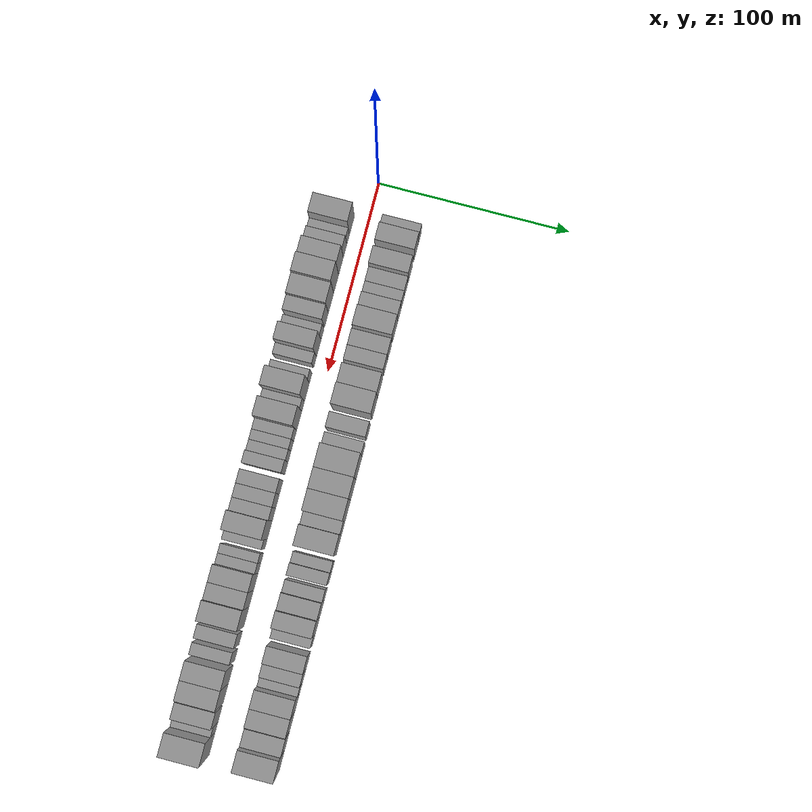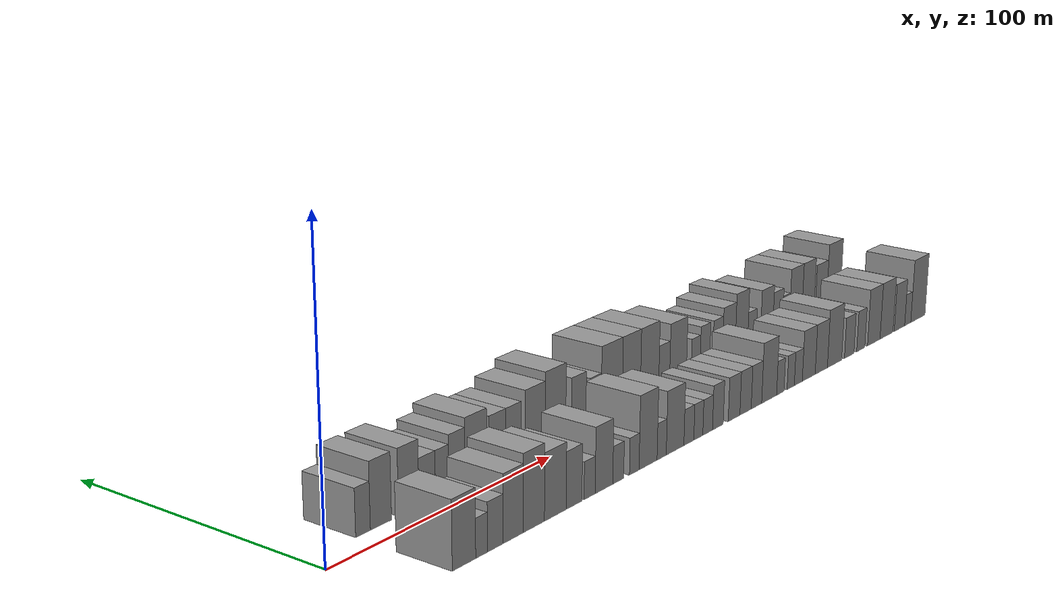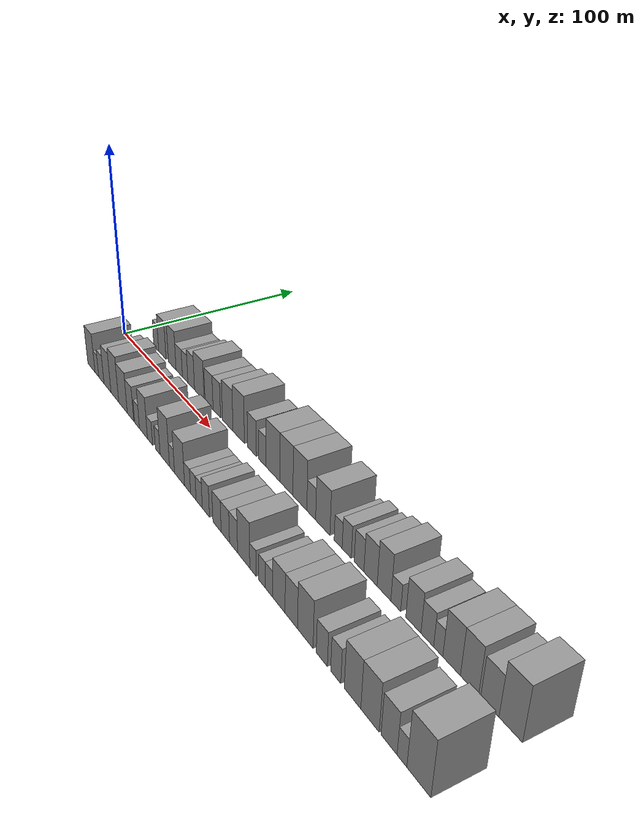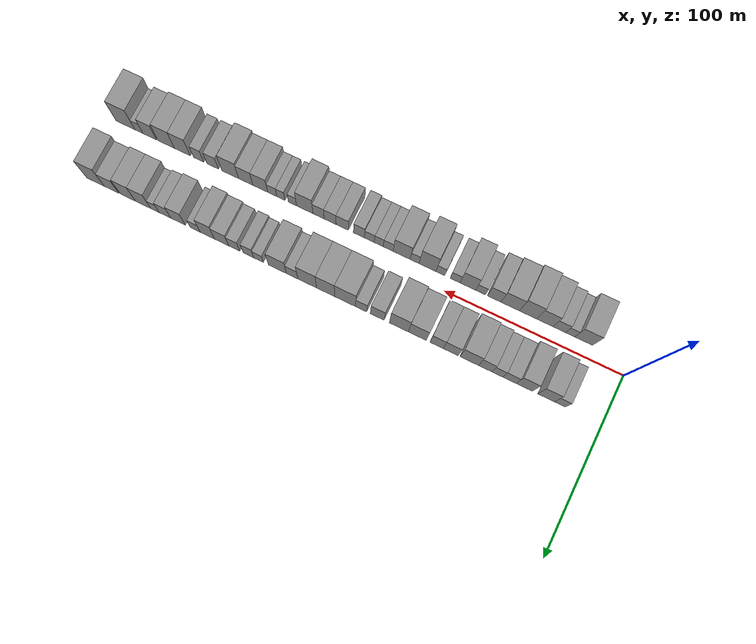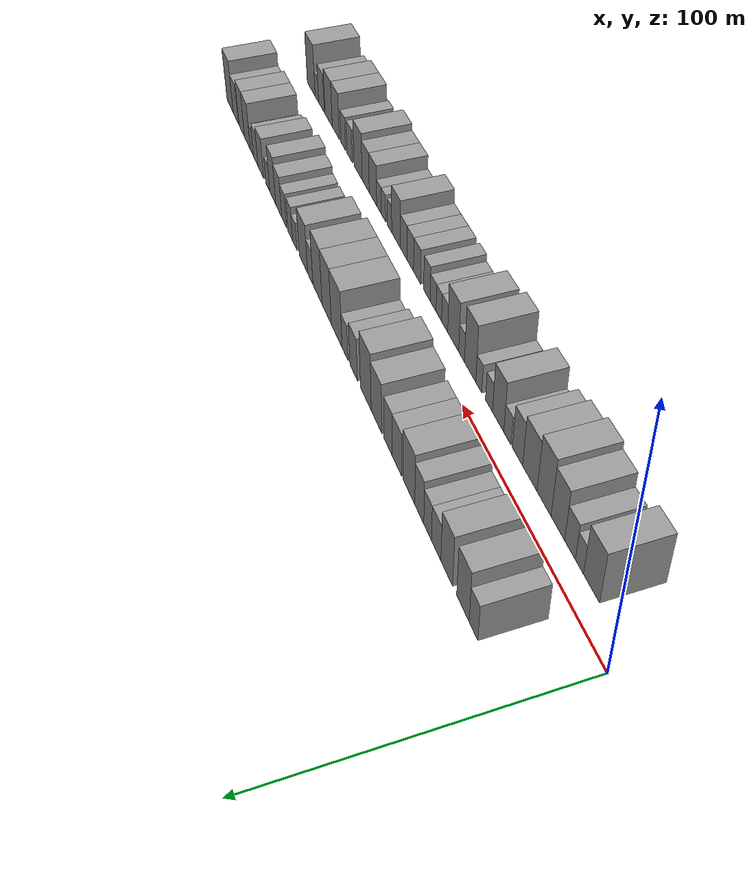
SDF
<sdf version="1.6">
 <world name="default">
  <scene>
   <sky><clouds><speed>12</speed></clouds></sky>
   <ambient>0.4 0.4 0.4 1</ambient>
   <background>0.7 0.7 0.7 1</background>
   <shadows>1</shadows>
  </scene>
  <gravity>0 0 -9.8066</gravity>
  <magnetic_field>6e-06 2.3e-05 -4.2e-05</magnetic_field>
  <physics default="0" name="default_physics" type="ode">
   <ode>
    <solver>
     <type>quick</type>
     <iters>10</iters>
     <sor>1.0</sor>
     <use_dynamic_moi_rescaling>0</use_dynamic_moi_rescaling>
    </solver>
    <constraints>
     <cfm>0</cfm>
     <erp>0.2</erp>
     <contact_max_correcting_vel>100</contact_max_correcting_vel>
     <contact_surface_layer>0.001</contact_surface_layer>
    </constraints>
   </ode>
   <max_step_size>0.004</max_step_size>
   <real_time_factor>1</real_time_factor>
   <real_time_update_rate>250</real_time_update_rate>
  </physics>
  <light name="sun" type="directional">
   <pose>0 0 10 0 0 0</pose>
   <diffuse>0.8 0.8 0.8 1</diffuse>
   <specular>0.2 0.2 0.2 1</specular>
   <attenuation>
    <range>1000</range>
    <constant>0.9</constant>
    <linear>0.01</linear>
    <quadratic>0.001</quadratic>
   </attenuation>
   <direction>-0.5 0.1 -0.9</direction>
  </light>
  <model name="building_1">
   <static>1</static>
   <pose>23.0567 17.5000 0 0.000000 0.000000 1.570796</pose>
   <link name="link">
    <pose>0 0 7.50 0 0 0</pose>
    <collision name="collision"><geometry><box><size>20.0000 6.1135 15.0000</size></box></geometry></collision>
    <visual name="visual">
     <cast_shadows>0</cast_shadows>
     <geometry><box><size>20.0000 6.1135 15.0000</size></box></geometry>
     <material>
      <script>
       <uri>model://grey_wall/materials/scripts</uri>
       <uri>model://grey_wall/materials/textures</uri>
       <name>vrc/grey_wall</name>
      </script>
     </material>
    </visual>
   </link>
  </model>
  <model name="building_2">
   <static>1</static>
   <pose>30.5935 17.5000 0 0.000000 0.000000 1.570796</pose>
   <link name="link">
    <pose>0 0 10.50 0 0 0</pose>
    <collision name="collision"><geometry><box><size>20.0000 8.9601 21.0000</size></box></geometry></collision>
    <visual name="visual">
     <cast_shadows>0</cast_shadows>
     <geometry><box><size>20.0000 8.9601 21.0000</size></box></geometry>
     <material>
      <script>
       <uri>model://grey_wall/materials/scripts</uri>
       <uri>model://grey_wall/materials/textures</uri>
       <name>vrc/grey_wall</name>
      </script>
     </material>
    </visual>
   </link>
  </model>
  <model name="building_3">
   <static>1</static>
   <pose>42.5482 17.5000 0 0.000000 0.000000 1.570796</pose>
   <link name="link">
    <pose>0 0 10.50 0 0 0</pose>
    <collision name="collision"><geometry><box><size>20.0000 8.9492 21.0000</size></box></geometry></collision>
    <visual name="visual">
     <cast_shadows>0</cast_shadows>
     <geometry><box><size>20.0000 8.9492 21.0000</size></box></geometry>
     <material>
      <script>
       <uri>model://grey_wall/materials/scripts</uri>
       <uri>model://grey_wall/materials/textures</uri>
       <name>vrc/grey_wall</name>
      </script>
     </material>
    </visual>
   </link>
  </model>
  <model name="building_4">
   <static>1</static>
   <pose>50.7129 17.5000 0 0.000000 0.000000 1.570796</pose>
   <link name="link">
    <pose>0 0 7.50 0 0 0</pose>
    <collision name="collision"><geometry><box><size>20.0000 7.3801 15.0000</size></box></geometry></collision>
    <visual name="visual">
     <cast_shadows>0</cast_shadows>
     <geometry><box><size>20.0000 7.3801 15.0000</size></box></geometry>
     <material>
      <script>
       <uri>model://grey_wall/materials/scripts</uri>
       <uri>model://grey_wall/materials/textures</uri>
       <name>vrc/grey_wall</name>
      </script>
     </material>
    </visual>
   </link>
  </model>
  <model name="building_5">
   <static>1</static>
   <pose>57.4828 17.5000 0 0.000000 0.000000 1.570796</pose>
   <link name="link">
    <pose>0 0 7.50 0 0 0</pose>
    <collision name="collision"><geometry><box><size>20.0000 6.1598 15.0000</size></box></geometry></collision>
    <visual name="visual">
     <cast_shadows>0</cast_shadows>
     <geometry><box><size>20.0000 6.1598 15.0000</size></box></geometry>
     <material>
      <script>
       <uri>model://grey_wall/materials/scripts</uri>
       <uri>model://grey_wall/materials/textures</uri>
       <name>vrc/grey_wall</name>
      </script>
     </material>
    </visual>
   </link>
  </model>
  <model name="building_6">
   <static>1</static>
   <pose>64.2655 17.5000 0 0.000000 0.000000 1.570796</pose>
   <link name="link">
    <pose>0 0 9.00 0 0 0</pose>
    <collision name="collision"><geometry><box><size>20.0000 7.4056 18.0000</size></box></geometry></collision>
    <visual name="visual">
     <cast_shadows>0</cast_shadows>
     <geometry><box><size>20.0000 7.4056 18.0000</size></box></geometry>
     <material>
      <script>
       <uri>model://grey_wall/materials/scripts</uri>
       <uri>model://grey_wall/materials/textures</uri>
       <name>vrc/grey_wall</name>
      </script>
     </material>
    </visual>
   </link>
  </model>
  <model name="building_7">
   <static>1</static>
   <pose>73.1380 17.5000 0 0.000000 0.000000 1.570796</pose>
   <link name="link">
    <pose>0 0 10.50 0 0 0</pose>
    <collision name="collision"><geometry><box><size>20.0000 10.3393 21.0000</size></box></geometry></collision>
    <visual name="visual">
     <cast_shadows>0</cast_shadows>
     <geometry><box><size>20.0000 10.3393 21.0000</size></box></geometry>
     <material>
      <script>
       <uri>model://grey_wall/materials/scripts</uri>
       <uri>model://grey_wall/materials/textures</uri>
       <name>vrc/grey_wall</name>
      </script>
     </material>
    </visual>
   </link>
  </model>
  <model name="building_8">
   <static>1</static>
   <pose>83.4733 17.5000 0 0.000000 0.000000 1.570796</pose>
   <link name="link">
    <pose>0 0 9.00 0 0 0</pose>
    <collision name="collision"><geometry><box><size>20.0000 8.3312 18.0000</size></box></geometry></collision>
    <visual name="visual">
     <cast_shadows>0</cast_shadows>
     <geometry><box><size>20.0000 8.3312 18.0000</size></box></geometry>
     <material>
      <script>
       <uri>model://grey_wall/materials/scripts</uri>
       <uri>model://grey_wall/materials/textures</uri>
       <name>vrc/grey_wall</name>
      </script>
     </material>
    </visual>
   </link>
  </model>
  <model name="building_9">
   <static>1</static>
   <pose>91.4008 17.5000 0 0.000000 0.000000 1.570796</pose>
   <link name="link">
    <pose>0 0 9.00 0 0 0</pose>
    <collision name="collision"><geometry><box><size>20.0000 7.5239 18.0000</size></box></geometry></collision>
    <visual name="visual">
     <cast_shadows>0</cast_shadows>
     <geometry><box><size>20.0000 7.5239 18.0000</size></box></geometry>
     <material>
      <script>
       <uri>model://grey_wall/materials/scripts</uri>
       <uri>model://grey_wall/materials/textures</uri>
       <name>vrc/grey_wall</name>
      </script>
     </material>
    </visual>
   </link>
  </model>
  <model name="building_10">
   <static>1</static>
   <pose>102.2563 17.5000 0 0.000000 0.000000 1.570796</pose>
   <link name="link">
    <pose>0 0 10.50 0 0 0</pose>
    <collision name="collision"><geometry><box><size>20.0000 10.1870 21.0000</size></box></geometry></collision>
    <visual name="visual">
     <cast_shadows>0</cast_shadows>
     <geometry><box><size>20.0000 10.1870 21.0000</size></box></geometry>
     <material>
      <script>
       <uri>model://grey_wall/materials/scripts</uri>
       <uri>model://grey_wall/materials/textures</uri>
       <name>vrc/grey_wall</name>
      </script>
     </material>
    </visual>
   </link>
  </model>
  <model name="building_11">
   <static>1</static>
   <pose>112.7394 17.5000 0 0.000000 0.000000 1.570796</pose>
   <link name="link">
    <pose>0 0 12.00 0 0 0</pose>
    <collision name="collision"><geometry><box><size>20.0000 10.7792 24.0000</size></box></geometry></collision>
    <visual name="visual">
     <cast_shadows>0</cast_shadows>
     <geometry><box><size>20.0000 10.7792 24.0000</size></box></geometry>
     <material>
      <script>
       <uri>model://grey_wall/materials/scripts</uri>
       <uri>model://grey_wall/materials/textures</uri>
       <name>vrc/grey_wall</name>
      </script>
     </material>
    </visual>
   </link>
  </model>
  <model name="building_12">
   <static>1</static>
   <pose>125.0622 17.5000 0 0.000000 0.000000 1.570796</pose>
   <link name="link">
    <pose>0 0 9.00 0 0 0</pose>
    <collision name="collision"><geometry><box><size>20.0000 7.8665 18.0000</size></box></geometry></collision>
    <visual name="visual">
     <cast_shadows>0</cast_shadows>
     <geometry><box><size>20.0000 7.8665 18.0000</size></box></geometry>
     <material>
      <script>
       <uri>model://grey_wall/materials/scripts</uri>
       <uri>model://grey_wall/materials/textures</uri>
       <name>vrc/grey_wall</name>
      </script>
     </material>
    </visual>
   </link>
  </model>
  <model name="building_13">
   <static>1</static>
   <pose>134.1541 17.5000 0 0.000000 0.000000 1.570796</pose>
   <link name="link">
    <pose>0 0 7.50 0 0 0</pose>
    <collision name="collision"><geometry><box><size>20.0000 6.3173 15.0000</size></box></geometry></collision>
    <visual name="visual">
     <cast_shadows>0</cast_shadows>
     <geometry><box><size>20.0000 6.3173 15.0000</size></box></geometry>
     <material>
      <script>
       <uri>model://grey_wall/materials/scripts</uri>
       <uri>model://grey_wall/materials/textures</uri>
       <name>vrc/grey_wall</name>
      </script>
     </material>
    </visual>
   </link>
  </model>
  <model name="building_14">
   <static>1</static>
   <pose>143.2577 17.5000 0 0.000000 0.000000 1.570796</pose>
   <link name="link">
    <pose>0 0 12.00 0 0 0</pose>
    <collision name="collision"><geometry><box><size>20.0000 11.8899 24.0000</size></box></geometry></collision>
    <visual name="visual">
     <cast_shadows>0</cast_shadows>
     <geometry><box><size>20.0000 11.8899 24.0000</size></box></geometry>
     <material>
      <script>
       <uri>model://grey_wall/materials/scripts</uri>
       <uri>model://grey_wall/materials/textures</uri>
       <name>vrc/grey_wall</name>
      </script>
     </material>
    </visual>
   </link>
  </model>
  <model name="building_15">
   <static>1</static>
   <pose>154.4474 17.5000 0 0.000000 0.000000 1.570796</pose>
   <link name="link">
    <pose>0 0 12.00 0 0 0</pose>
    <collision name="collision"><geometry><box><size>20.0000 10.4894 24.0000</size></box></geometry></collision>
    <visual name="visual">
     <cast_shadows>0</cast_shadows>
     <geometry><box><size>20.0000 10.4894 24.0000</size></box></geometry>
     <material>
      <script>
       <uri>model://grey_wall/materials/scripts</uri>
       <uri>model://grey_wall/materials/textures</uri>
       <name>vrc/grey_wall</name>
      </script>
     </material>
    </visual>
   </link>
  </model>
  <model name="building_16">
   <static>1</static>
   <pose>165.1244 17.5000 0 0.000000 0.000000 1.570796</pose>
   <link name="link">
    <pose>0 0 12.00 0 0 0</pose>
    <collision name="collision"><geometry><box><size>20.0000 10.8648 24.0000</size></box></geometry></collision>
    <visual name="visual">
     <cast_shadows>0</cast_shadows>
     <geometry><box><size>20.0000 10.8648 24.0000</size></box></geometry>
     <material>
      <script>
       <uri>model://grey_wall/materials/scripts</uri>
       <uri>model://grey_wall/materials/textures</uri>
       <name>vrc/grey_wall</name>
      </script>
     </material>
    </visual>
   </link>
  </model>
  <model name="building_17">
   <static>1</static>
   <pose>173.8574 17.5000 0 0.000000 0.000000 1.570796</pose>
   <link name="link">
    <pose>0 0 7.50 0 0 0</pose>
    <collision name="collision"><geometry><box><size>20.0000 6.6013 15.0000</size></box></geometry></collision>
    <visual name="visual">
     <cast_shadows>0</cast_shadows>
     <geometry><box><size>20.0000 6.6013 15.0000</size></box></geometry>
     <material>
      <script>
       <uri>model://grey_wall/materials/scripts</uri>
       <uri>model://grey_wall/materials/textures</uri>
       <name>vrc/grey_wall</name>
      </script>
     </material>
    </visual>
   </link>
  </model>
  <model name="building_18">
   <static>1</static>
   <pose>182.3586 17.5000 0 0.000000 0.000000 1.570796</pose>
   <link name="link">
    <pose>0 0 10.50 0 0 0</pose>
    <collision name="collision"><geometry><box><size>20.0000 10.4010 21.0000</size></box></geometry></collision>
    <visual name="visual">
     <cast_shadows>0</cast_shadows>
     <geometry><box><size>20.0000 10.4010 21.0000</size></box></geometry>
     <material>
      <script>
       <uri>model://grey_wall/materials/scripts</uri>
       <uri>model://grey_wall/materials/textures</uri>
       <name>vrc/grey_wall</name>
      </script>
     </material>
    </visual>
   </link>
  </model>
  <model name="building_19">
   <static>1</static>
   <pose>193.3541 17.5000 0 0.000000 0.000000 1.570796</pose>
   <link name="link">
    <pose>0 0 6.00 0 0 0</pose>
    <collision name="collision"><geometry><box><size>20.0000 5.5900 12.0000</size></box></geometry></collision>
    <visual name="visual">
     <cast_shadows>0</cast_shadows>
     <geometry><box><size>20.0000 5.5900 12.0000</size></box></geometry>
     <material>
      <script>
       <uri>model://grey_wall/materials/scripts</uri>
       <uri>model://grey_wall/materials/textures</uri>
       <name>vrc/grey_wall</name>
      </script>
     </material>
    </visual>
   </link>
  </model>
  <model name="building_20">
   <static>1</static>
   <pose>199.2261 17.5000 0 0.000000 0.000000 1.570796</pose>
   <link name="link">
    <pose>0 0 7.50 0 0 0</pose>
    <collision name="collision"><geometry><box><size>20.0000 6.1541 15.0000</size></box></geometry></collision>
    <visual name="visual">
     <cast_shadows>0</cast_shadows>
     <geometry><box><size>20.0000 6.1541 15.0000</size></box></geometry>
     <material>
      <script>
       <uri>model://grey_wall/materials/scripts</uri>
       <uri>model://grey_wall/materials/textures</uri>
       <name>vrc/grey_wall</name>
      </script>
     </material>
    </visual>
   </link>
  </model>
  <model name="building_21">
   <static>1</static>
   <pose>207.4873 17.5000 0 0.000000 0.000000 1.570796</pose>
   <link name="link">
    <pose>0 0 7.50 0 0 0</pose>
    <collision name="collision"><geometry><box><size>20.0000 6.3683 15.0000</size></box></geometry></collision>
    <visual name="visual">
     <cast_shadows>0</cast_shadows>
     <geometry><box><size>20.0000 6.3683 15.0000</size></box></geometry>
     <material>
      <script>
       <uri>model://grey_wall/materials/scripts</uri>
       <uri>model://grey_wall/materials/textures</uri>
       <name>vrc/grey_wall</name>
      </script>
     </material>
    </visual>
   </link>
  </model>
  <model name="building_22">
   <static>1</static>
   <pose>214.8845 17.5000 0 0.000000 0.000000 1.570796</pose>
   <link name="link">
    <pose>0 0 9.00 0 0 0</pose>
    <collision name="collision"><geometry><box><size>20.0000 8.4260 18.0000</size></box></geometry></collision>
    <visual name="visual">
     <cast_shadows>0</cast_shadows>
     <geometry><box><size>20.0000 8.4260 18.0000</size></box></geometry>
     <material>
      <script>
       <uri>model://grey_wall/materials/scripts</uri>
       <uri>model://grey_wall/materials/textures</uri>
       <name>vrc/grey_wall</name>
      </script>
     </material>
    </visual>
   </link>
  </model>
  <model name="building_23">
   <static>1</static>
   <pose>223.3157 17.5000 0 0.000000 0.000000 1.570796</pose>
   <link name="link">
    <pose>0 0 10.50 0 0 0</pose>
    <collision name="collision"><geometry><box><size>20.0000 8.4365 21.0000</size></box></geometry></collision>
    <visual name="visual">
     <cast_shadows>0</cast_shadows>
     <geometry><box><size>20.0000 8.4365 21.0000</size></box></geometry>
     <material>
      <script>
       <uri>model://grey_wall/materials/scripts</uri>
       <uri>model://grey_wall/materials/textures</uri>
       <name>vrc/grey_wall</name>
      </script>
     </material>
    </visual>
   </link>
  </model>
  <model name="building_24">
   <static>1</static>
   <pose>230.4687 17.5000 0 0.000000 0.000000 1.570796</pose>
   <link name="link">
    <pose>0 0 6.00 0 0 0</pose>
    <collision name="collision"><geometry><box><size>20.0000 5.8695 12.0000</size></box></geometry></collision>
    <visual name="visual">
     <cast_shadows>0</cast_shadows>
     <geometry><box><size>20.0000 5.8695 12.0000</size></box></geometry>
     <material>
      <script>
       <uri>model://grey_wall/materials/scripts</uri>
       <uri>model://grey_wall/materials/textures</uri>
       <name>vrc/grey_wall</name>
      </script>
     </material>
    </visual>
   </link>
  </model>
  <model name="building_25">
   <static>1</static>
   <pose>240.7069 17.5000 0 0.000000 0.000000 1.570796</pose>
   <link name="link">
    <pose>0 0 9.00 0 0 0</pose>
    <collision name="collision"><geometry><box><size>20.0000 8.6068 18.0000</size></box></geometry></collision>
    <visual name="visual">
     <cast_shadows>0</cast_shadows>
     <geometry><box><size>20.0000 8.6068 18.0000</size></box></geometry>
     <material>
      <script>
       <uri>model://grey_wall/materials/scripts</uri>
       <uri>model://grey_wall/materials/textures</uri>
       <name>vrc/grey_wall</name>
      </script>
     </material>
    </visual>
   </link>
  </model>
  <model name="building_26">
   <static>1</static>
   <pose>248.5009 17.5000 0 0.000000 0.000000 1.570796</pose>
   <link name="link">
    <pose>0 0 7.50 0 0 0</pose>
    <collision name="collision"><geometry><box><size>20.0000 6.9813 15.0000</size></box></geometry></collision>
    <visual name="visual">
     <cast_shadows>0</cast_shadows>
     <geometry><box><size>20.0000 6.9813 15.0000</size></box></geometry>
     <material>
      <script>
       <uri>model://grey_wall/materials/scripts</uri>
       <uri>model://grey_wall/materials/textures</uri>
       <name>vrc/grey_wall</name>
      </script>
     </material>
    </visual>
   </link>
  </model>
  <model name="building_27">
   <static>1</static>
   <pose>254.4521 17.5000 0 0.000000 0.000000 1.570796</pose>
   <link name="link">
    <pose>0 0 6.00 0 0 0</pose>
    <collision name="collision"><geometry><box><size>20.0000 4.9211 12.0000</size></box></geometry></collision>
    <visual name="visual">
     <cast_shadows>0</cast_shadows>
     <geometry><box><size>20.0000 4.9211 12.0000</size></box></geometry>
     <material>
      <script>
       <uri>model://grey_wall/materials/scripts</uri>
       <uri>model://grey_wall/materials/textures</uri>
       <name>vrc/grey_wall</name>
      </script>
     </material>
    </visual>
   </link>
  </model>
  <model name="building_28">
   <static>1</static>
   <pose>261.4727 17.5000 0 0.000000 0.000000 1.570796</pose>
   <link name="link">
    <pose>0 0 10.50 0 0 0</pose>
    <collision name="collision"><geometry><box><size>20.0000 9.1201 21.0000</size></box></geometry></collision>
    <visual name="visual">
     <cast_shadows>0</cast_shadows>
     <geometry><box><size>20.0000 9.1201 21.0000</size></box></geometry>
     <material>
      <script>
       <uri>model://grey_wall/materials/scripts</uri>
       <uri>model://grey_wall/materials/textures</uri>
       <name>vrc/grey_wall</name>
      </script>
     </material>
    </visual>
   </link>
  </model>
  <model name="building_29">
   <static>1</static>
   <pose>270.5441 17.5000 0 0.000000 0.000000 1.570796</pose>
   <link name="link">
    <pose>0 0 10.50 0 0 0</pose>
    <collision name="collision"><geometry><box><size>20.0000 9.0228 21.0000</size></box></geometry></collision>
    <visual name="visual">
     <cast_shadows>0</cast_shadows>
     <geometry><box><size>20.0000 9.0228 21.0000</size></box></geometry>
     <material>
      <script>
       <uri>model://grey_wall/materials/scripts</uri>
       <uri>model://grey_wall/materials/textures</uri>
       <name>vrc/grey_wall</name>
      </script>
     </material>
    </visual>
   </link>
  </model>
  <model name="building_30">
   <static>1</static>
   <pose>280.3954 17.5000 0 0.000000 0.000000 1.570796</pose>
   <link name="link">
    <pose>0 0 9.00 0 0 0</pose>
    <collision name="collision"><geometry><box><size>20.0000 8.6798 18.0000</size></box></geometry></collision>
    <visual name="visual">
     <cast_shadows>0</cast_shadows>
     <geometry><box><size>20.0000 8.6798 18.0000</size></box></geometry>
     <material>
      <script>
       <uri>model://grey_wall/materials/scripts</uri>
       <uri>model://grey_wall/materials/textures</uri>
       <name>vrc/grey_wall</name>
      </script>
     </material>
    </visual>
   </link>
  </model>
  <model name="building_31">
   <static>1</static>
   <pose>290.0700 17.5000 0 0.000000 0.000000 1.570796</pose>
   <link name="link">
    <pose>0 0 12.00 0 0 0</pose>
    <collision name="collision"><geometry><box><size>20.0000 10.6693 24.0000</size></box></geometry></collision>
    <visual name="visual">
     <cast_shadows>0</cast_shadows>
     <geometry><box><size>20.0000 10.6693 24.0000</size></box></geometry>
     <material>
      <script>
       <uri>model://grey_wall/materials/scripts</uri>
       <uri>model://grey_wall/materials/textures</uri>
       <name>vrc/grey_wall</name>
      </script>
     </material>
    </visual>
   </link>
  </model>
  <model name="building_32">
   <static>1</static>
   <pose>24.9873 -17.5000 0 0.000000 0.000000 1.570796</pose>
   <link name="link">
    <pose>0 0 10.50 0 0 0</pose>
    <collision name="collision"><geometry><box><size>20.0000 9.9746 21.0000</size></box></geometry></collision>
    <visual name="visual">
     <cast_shadows>0</cast_shadows>
     <geometry><box><size>20.0000 9.9746 21.0000</size></box></geometry>
     <material>
      <script>
       <uri>model://grey_wall/materials/scripts</uri>
       <uri>model://grey_wall/materials/textures</uri>
       <name>vrc/grey_wall</name>
      </script>
     </material>
    </visual>
   </link>
  </model>
  <model name="building_33">
   <static>1</static>
   <pose>32.5217 -17.5000 0 0.000000 0.000000 1.570796</pose>
   <link name="link">
    <pose>0 0 6.00 0 0 0</pose>
    <collision name="collision"><geometry><box><size>20.0000 5.0942 12.0000</size></box></geometry></collision>
    <visual name="visual">
     <cast_shadows>0</cast_shadows>
     <geometry><box><size>20.0000 5.0942 12.0000</size></box></geometry>
     <material>
      <script>
       <uri>model://grey_wall/materials/scripts</uri>
       <uri>model://grey_wall/materials/textures</uri>
       <name>vrc/grey_wall</name>
      </script>
     </material>
    </visual>
   </link>
  </model>
  <model name="building_34">
   <static>1</static>
   <pose>38.5519 -17.5000 0 0.000000 0.000000 1.570796</pose>
   <link name="link">
    <pose>0 0 7.50 0 0 0</pose>
    <collision name="collision"><geometry><box><size>20.0000 6.9662 15.0000</size></box></geometry></collision>
    <visual name="visual">
     <cast_shadows>0</cast_shadows>
     <geometry><box><size>20.0000 6.9662 15.0000</size></box></geometry>
     <material>
      <script>
       <uri>model://grey_wall/materials/scripts</uri>
       <uri>model://grey_wall/materials/textures</uri>
       <name>vrc/grey_wall</name>
      </script>
     </material>
    </visual>
   </link>
  </model>
  <model name="building_35">
   <static>1</static>
   <pose>46.5921 -17.5000 0 0.000000 0.000000 1.570796</pose>
   <link name="link">
    <pose>0 0 10.50 0 0 0</pose>
    <collision name="collision"><geometry><box><size>20.0000 9.1143 21.0000</size></box></geometry></collision>
    <visual name="visual">
     <cast_shadows>0</cast_shadows>
     <geometry><box><size>20.0000 9.1143 21.0000</size></box></geometry>
     <material>
      <script>
       <uri>model://grey_wall/materials/scripts</uri>
       <uri>model://grey_wall/materials/textures</uri>
       <name>vrc/grey_wall</name>
      </script>
     </material>
    </visual>
   </link>
  </model>
  <model name="building_36">
   <static>1</static>
   <pose>56.0097 -17.5000 0 0.000000 0.000000 1.570796</pose>
   <link name="link">
    <pose>0 0 12.00 0 0 0</pose>
    <collision name="collision"><geometry><box><size>20.0000 9.7208 24.0000</size></box></geometry></collision>
    <visual name="visual">
     <cast_shadows>0</cast_shadows>
     <geometry><box><size>20.0000 9.7208 24.0000</size></box></geometry>
     <material>
      <script>
       <uri>model://grey_wall/materials/scripts</uri>
       <uri>model://grey_wall/materials/textures</uri>
       <name>vrc/grey_wall</name>
      </script>
     </material>
    </visual>
   </link>
  </model>
  <model name="building_37">
   <static>1</static>
   <pose>66.0737 -17.5000 0 0.000000 0.000000 1.570796</pose>
   <link name="link">
    <pose>0 0 10.50 0 0 0</pose>
    <collision name="collision"><geometry><box><size>20.0000 10.4071 21.0000</size></box></geometry></collision>
    <visual name="visual">
     <cast_shadows>0</cast_shadows>
     <geometry><box><size>20.0000 10.4071 21.0000</size></box></geometry>
     <material>
      <script>
       <uri>model://grey_wall/materials/scripts</uri>
       <uri>model://grey_wall/materials/textures</uri>
       <name>vrc/grey_wall</name>
      </script>
     </material>
    </visual>
   </link>
  </model>
  <model name="building_38">
   <static>1</static>
   <pose>75.1078 -17.5000 0 0.000000 0.000000 1.570796</pose>
   <link name="link">
    <pose>0 0 9.00 0 0 0</pose>
    <collision name="collision"><geometry><box><size>20.0000 7.6611 18.0000</size></box></geometry></collision>
    <visual name="visual">
     <cast_shadows>0</cast_shadows>
     <geometry><box><size>20.0000 7.6611 18.0000</size></box></geometry>
     <material>
      <script>
       <uri>model://grey_wall/materials/scripts</uri>
       <uri>model://grey_wall/materials/textures</uri>
       <name>vrc/grey_wall</name>
      </script>
     </material>
    </visual>
   </link>
  </model>
  <model name="building_39">
   <static>1</static>
   <pose>82.7223 -17.5000 0 0.000000 0.000000 1.570796</pose>
   <link name="link">
    <pose>0 0 6.00 0 0 0</pose>
    <collision name="collision"><geometry><box><size>20.0000 5.5679 12.0000</size></box></geometry></collision>
    <visual name="visual">
     <cast_shadows>0</cast_shadows>
     <geometry><box><size>20.0000 5.5679 12.0000</size></box></geometry>
     <material>
      <script>
       <uri>model://grey_wall/materials/scripts</uri>
       <uri>model://grey_wall/materials/textures</uri>
       <name>vrc/grey_wall</name>
      </script>
     </material>
    </visual>
   </link>
  </model>
  <model name="building_40">
   <static>1</static>
   <pose>89.9663 -17.5000 0 0.000000 0.000000 1.570796</pose>
   <link name="link">
    <pose>0 0 10.50 0 0 0</pose>
    <collision name="collision"><geometry><box><size>20.0000 8.9201 21.0000</size></box></geometry></collision>
    <visual name="visual">
     <cast_shadows>0</cast_shadows>
     <geometry><box><size>20.0000 8.9201 21.0000</size></box></geometry>
     <material>
      <script>
       <uri>model://grey_wall/materials/scripts</uri>
       <uri>model://grey_wall/materials/textures</uri>
       <name>vrc/grey_wall</name>
      </script>
     </material>
    </visual>
   </link>
  </model>
  <model name="building_41">
   <static>1</static>
   <pose>97.2528 -17.5000 0 0.000000 0.000000 1.570796</pose>
   <link name="link">
    <pose>0 0 6.00 0 0 0</pose>
    <collision name="collision"><geometry><box><size>20.0000 5.6529 12.0000</size></box></geometry></collision>
    <visual name="visual">
     <cast_shadows>0</cast_shadows>
     <geometry><box><size>20.0000 5.6529 12.0000</size></box></geometry>
     <material>
      <script>
       <uri>model://grey_wall/materials/scripts</uri>
       <uri>model://grey_wall/materials/textures</uri>
       <name>vrc/grey_wall</name>
      </script>
     </material>
    </visual>
   </link>
  </model>
  <model name="building_42">
   <static>1</static>
   <pose>105.6208 -17.5000 0 0.000000 0.000000 1.570796</pose>
   <link name="link">
    <pose>0 0 6.00 0 0 0</pose>
    <collision name="collision"><geometry><box><size>20.0000 5.0831 12.0000</size></box></geometry></collision>
    <visual name="visual">
     <cast_shadows>0</cast_shadows>
     <geometry><box><size>20.0000 5.0831 12.0000</size></box></geometry>
     <material>
      <script>
       <uri>model://grey_wall/materials/scripts</uri>
       <uri>model://grey_wall/materials/textures</uri>
       <name>vrc/grey_wall</name>
      </script>
     </material>
    </visual>
   </link>
  </model>
  <model name="building_43">
   <static>1</static>
   <pose>113.0067 -17.5000 0 0.000000 0.000000 1.570796</pose>
   <link name="link">
    <pose>0 0 12.00 0 0 0</pose>
    <collision name="collision"><geometry><box><size>20.0000 9.6888 24.0000</size></box></geometry></collision>
    <visual name="visual">
     <cast_shadows>0</cast_shadows>
     <geometry><box><size>20.0000 9.6888 24.0000</size></box></geometry>
     <material>
      <script>
       <uri>model://grey_wall/materials/scripts</uri>
       <uri>model://grey_wall/materials/textures</uri>
       <name>vrc/grey_wall</name>
      </script>
     </material>
    </visual>
   </link>
  </model>
  <model name="building_44">
   <static>1</static>
   <pose>120.3781 -17.5000 0 0.000000 0.000000 1.570796</pose>
   <link name="link">
    <pose>0 0 6.00 0 0 0</pose>
    <collision name="collision"><geometry><box><size>20.0000 5.0541 12.0000</size></box></geometry></collision>
    <visual name="visual">
     <cast_shadows>0</cast_shadows>
     <geometry><box><size>20.0000 5.0541 12.0000</size></box></geometry>
     <material>
      <script>
       <uri>model://grey_wall/materials/scripts</uri>
       <uri>model://grey_wall/materials/textures</uri>
       <name>vrc/grey_wall</name>
      </script>
     </material>
    </visual>
   </link>
  </model>
  <model name="building_45">
   <static>1</static>
   <pose>127.8406 -17.5000 0 0.000000 0.000000 1.570796</pose>
   <link name="link">
    <pose>0 0 10.50 0 0 0</pose>
    <collision name="collision"><geometry><box><size>20.0000 9.8708 21.0000</size></box></geometry></collision>
    <visual name="visual">
     <cast_shadows>0</cast_shadows>
     <geometry><box><size>20.0000 9.8708 21.0000</size></box></geometry>
     <material>
      <script>
       <uri>model://grey_wall/materials/scripts</uri>
       <uri>model://grey_wall/materials/textures</uri>
       <name>vrc/grey_wall</name>
      </script>
     </material>
    </visual>
   </link>
  </model>
  <model name="building_46">
   <static>1</static>
   <pose>135.6045 -17.5000 0 0.000000 0.000000 1.570796</pose>
   <link name="link">
    <pose>0 0 6.00 0 0 0</pose>
    <collision name="collision"><geometry><box><size>20.0000 5.6569 12.0000</size></box></geometry></collision>
    <visual name="visual">
     <cast_shadows>0</cast_shadows>
     <geometry><box><size>20.0000 5.6569 12.0000</size></box></geometry>
     <material>
      <script>
       <uri>model://grey_wall/materials/scripts</uri>
       <uri>model://grey_wall/materials/textures</uri>
       <name>vrc/grey_wall</name>
      </script>
     </material>
    </visual>
   </link>
  </model>
  <model name="building_47">
   <static>1</static>
   <pose>141.0291 -17.5000 0 0.000000 0.000000 1.570796</pose>
   <link name="link">
    <pose>0 0 6.00 0 0 0</pose>
    <collision name="collision"><geometry><box><size>20.0000 5.1924 12.0000</size></box></geometry></collision>
    <visual name="visual">
     <cast_shadows>0</cast_shadows>
     <geometry><box><size>20.0000 5.1924 12.0000</size></box></geometry>
     <material>
      <script>
       <uri>model://grey_wall/materials/scripts</uri>
       <uri>model://grey_wall/materials/textures</uri>
       <name>vrc/grey_wall</name>
      </script>
     </material>
    </visual>
   </link>
  </model>
  <model name="building_48">
   <static>1</static>
   <pose>146.4535 -17.5000 0 0.000000 0.000000 1.570796</pose>
   <link name="link">
    <pose>0 0 6.00 0 0 0</pose>
    <collision name="collision"><geometry><box><size>20.0000 5.6562 12.0000</size></box></geometry></collision>
    <visual name="visual">
     <cast_shadows>0</cast_shadows>
     <geometry><box><size>20.0000 5.6562 12.0000</size></box></geometry>
     <material>
      <script>
       <uri>model://grey_wall/materials/scripts</uri>
       <uri>model://grey_wall/materials/textures</uri>
       <name>vrc/grey_wall</name>
      </script>
     </material>
    </visual>
   </link>
  </model>
  <model name="building_49">
   <static>1</static>
   <pose>152.4802 -17.5000 0 0.000000 0.000000 1.570796</pose>
   <link name="link">
    <pose>0 0 7.50 0 0 0</pose>
    <collision name="collision"><geometry><box><size>20.0000 6.3972 15.0000</size></box></geometry></collision>
    <visual name="visual">
     <cast_shadows>0</cast_shadows>
     <geometry><box><size>20.0000 6.3972 15.0000</size></box></geometry>
     <material>
      <script>
       <uri>model://grey_wall/materials/scripts</uri>
       <uri>model://grey_wall/materials/textures</uri>
       <name>vrc/grey_wall</name>
      </script>
     </material>
    </visual>
   </link>
  </model>
  <model name="building_50">
   <static>1</static>
   <pose>162.2317 -17.5000 0 0.000000 0.000000 1.570796</pose>
   <link name="link">
    <pose>0 0 7.50 0 0 0</pose>
    <collision name="collision"><geometry><box><size>20.0000 7.1058 15.0000</size></box></geometry></collision>
    <visual name="visual">
     <cast_shadows>0</cast_shadows>
     <geometry><box><size>20.0000 7.1058 15.0000</size></box></geometry>
     <material>
      <script>
       <uri>model://grey_wall/materials/scripts</uri>
       <uri>model://grey_wall/materials/textures</uri>
       <name>vrc/grey_wall</name>
      </script>
     </material>
    </visual>
   </link>
  </model>
  <model name="building_51">
   <static>1</static>
   <pose>169.2778 -17.5000 0 0.000000 0.000000 1.570796</pose>
   <link name="link">
    <pose>0 0 7.50 0 0 0</pose>
    <collision name="collision"><geometry><box><size>20.0000 6.9863 15.0000</size></box></geometry></collision>
    <visual name="visual">
     <cast_shadows>0</cast_shadows>
     <geometry><box><size>20.0000 6.9863 15.0000</size></box></geometry>
     <material>
      <script>
       <uri>model://grey_wall/materials/scripts</uri>
       <uri>model://grey_wall/materials/textures</uri>
       <name>vrc/grey_wall</name>
      </script>
     </material>
    </visual>
   </link>
  </model>
  <model name="building_52">
   <static>1</static>
   <pose>176.0618 -17.5000 0 0.000000 0.000000 1.570796</pose>
   <link name="link">
    <pose>0 0 7.50 0 0 0</pose>
    <collision name="collision"><geometry><box><size>20.0000 6.5817 15.0000</size></box></geometry></collision>
    <visual name="visual">
     <cast_shadows>0</cast_shadows>
     <geometry><box><size>20.0000 6.5817 15.0000</size></box></geometry>
     <material>
      <script>
       <uri>model://grey_wall/materials/scripts</uri>
       <uri>model://grey_wall/materials/textures</uri>
       <name>vrc/grey_wall</name>
      </script>
     </material>
    </visual>
   </link>
  </model>
  <model name="building_53">
   <static>1</static>
   <pose>184.1366 -17.5000 0 0.000000 0.000000 1.570796</pose>
   <link name="link">
    <pose>0 0 10.50 0 0 0</pose>
    <collision name="collision"><geometry><box><size>20.0000 9.5681 21.0000</size></box></geometry></collision>
    <visual name="visual">
     <cast_shadows>0</cast_shadows>
     <geometry><box><size>20.0000 9.5681 21.0000</size></box></geometry>
     <material>
      <script>
       <uri>model://grey_wall/materials/scripts</uri>
       <uri>model://grey_wall/materials/textures</uri>
       <name>vrc/grey_wall</name>
      </script>
     </material>
    </visual>
   </link>
  </model>
  <model name="building_54">
   <static>1</static>
   <pose>191.3354 -17.5000 0 0.000000 0.000000 1.570796</pose>
   <link name="link">
    <pose>0 0 6.00 0 0 0</pose>
    <collision name="collision"><geometry><box><size>20.0000 4.8296 12.0000</size></box></geometry></collision>
    <visual name="visual">
     <cast_shadows>0</cast_shadows>
     <geometry><box><size>20.0000 4.8296 12.0000</size></box></geometry>
     <material>
      <script>
       <uri>model://grey_wall/materials/scripts</uri>
       <uri>model://grey_wall/materials/textures</uri>
       <name>vrc/grey_wall</name>
      </script>
     </material>
    </visual>
   </link>
  </model>
  <model name="building_55">
   <static>1</static>
   <pose>198.1550 -17.5000 0 0.000000 0.000000 1.570796</pose>
   <link name="link">
    <pose>0 0 6.00 0 0 0</pose>
    <collision name="collision"><geometry><box><size>20.0000 4.8096 12.0000</size></box></geometry></collision>
    <visual name="visual">
     <cast_shadows>0</cast_shadows>
     <geometry><box><size>20.0000 4.8096 12.0000</size></box></geometry>
     <material>
      <script>
       <uri>model://grey_wall/materials/scripts</uri>
       <uri>model://grey_wall/materials/textures</uri>
       <name>vrc/grey_wall</name>
      </script>
     </material>
    </visual>
   </link>
  </model>
  <model name="building_56">
   <static>1</static>
   <pose>203.2255 -17.5000 0 0.000000 0.000000 1.570796</pose>
   <link name="link">
    <pose>0 0 6.00 0 0 0</pose>
    <collision name="collision"><geometry><box><size>20.0000 5.3314 12.0000</size></box></geometry></collision>
    <visual name="visual">
     <cast_shadows>0</cast_shadows>
     <geometry><box><size>20.0000 5.3314 12.0000</size></box></geometry>
     <material>
      <script>
       <uri>model://grey_wall/materials/scripts</uri>
       <uri>model://grey_wall/materials/textures</uri>
       <name>vrc/grey_wall</name>
      </script>
     </material>
    </visual>
   </link>
  </model>
  <model name="building_57">
   <static>1</static>
   <pose>210.2782 -17.5000 0 0.000000 0.000000 1.570796</pose>
   <link name="link">
    <pose>0 0 9.00 0 0 0</pose>
    <collision name="collision"><geometry><box><size>20.0000 8.7739 18.0000</size></box></geometry></collision>
    <visual name="visual">
     <cast_shadows>0</cast_shadows>
     <geometry><box><size>20.0000 8.7739 18.0000</size></box></geometry>
     <material>
      <script>
       <uri>model://grey_wall/materials/scripts</uri>
       <uri>model://grey_wall/materials/textures</uri>
       <name>vrc/grey_wall</name>
      </script>
     </material>
    </visual>
   </link>
  </model>
  <model name="building_58">
   <static>1</static>
   <pose>218.9096 -17.5000 0 0.000000 0.000000 1.570796</pose>
   <link name="link">
    <pose>0 0 9.00 0 0 0</pose>
    <collision name="collision"><geometry><box><size>20.0000 8.4890 18.0000</size></box></geometry></collision>
    <visual name="visual">
     <cast_shadows>0</cast_shadows>
     <geometry><box><size>20.0000 8.4890 18.0000</size></box></geometry>
     <material>
      <script>
       <uri>model://grey_wall/materials/scripts</uri>
       <uri>model://grey_wall/materials/textures</uri>
       <name>vrc/grey_wall</name>
      </script>
     </material>
    </visual>
   </link>
  </model>
  <model name="building_59">
   <static>1</static>
   <pose>228.1940 -17.5000 0 0.000000 0.000000 1.570796</pose>
   <link name="link">
    <pose>0 0 10.50 0 0 0</pose>
    <collision name="collision"><geometry><box><size>20.0000 10.0798 21.0000</size></box></geometry></collision>
    <visual name="visual">
     <cast_shadows>0</cast_shadows>
     <geometry><box><size>20.0000 10.0798 21.0000</size></box></geometry>
     <material>
      <script>
       <uri>model://grey_wall/materials/scripts</uri>
       <uri>model://grey_wall/materials/textures</uri>
       <name>vrc/grey_wall</name>
      </script>
     </material>
    </visual>
   </link>
  </model>
  <model name="building_60">
   <static>1</static>
   <pose>238.6845 -17.5000 0 0.000000 0.000000 1.570796</pose>
   <link name="link">
    <pose>0 0 7.50 0 0 0</pose>
    <collision name="collision"><geometry><box><size>20.0000 6.9010 15.0000</size></box></geometry></collision>
    <visual name="visual">
     <cast_shadows>0</cast_shadows>
     <geometry><box><size>20.0000 6.9010 15.0000</size></box></geometry>
     <material>
      <script>
       <uri>model://grey_wall/materials/scripts</uri>
       <uri>model://grey_wall/materials/textures</uri>
       <name>vrc/grey_wall</name>
      </script>
     </material>
    </visual>
   </link>
  </model>
  <model name="building_61">
   <static>1</static>
   <pose>247.1431 -17.5000 0 0.000000 0.000000 1.570796</pose>
   <link name="link">
    <pose>0 0 7.50 0 0 0</pose>
    <collision name="collision"><geometry><box><size>20.0000 6.0163 15.0000</size></box></geometry></collision>
    <visual name="visual">
     <cast_shadows>0</cast_shadows>
     <geometry><box><size>20.0000 6.0163 15.0000</size></box></geometry>
     <material>
      <script>
       <uri>model://grey_wall/materials/scripts</uri>
       <uri>model://grey_wall/materials/textures</uri>
       <name>vrc/grey_wall</name>
      </script>
     </material>
    </visual>
   </link>
  </model>
  <model name="building_62">
   <static>1</static>
   <pose>256.8787 -17.5000 0 0.000000 0.000000 1.570796</pose>
   <link name="link">
    <pose>0 0 10.50 0 0 0</pose>
    <collision name="collision"><geometry><box><size>20.0000 9.4549 21.0000</size></box></geometry></collision>
    <visual name="visual">
     <cast_shadows>0</cast_shadows>
     <geometry><box><size>20.0000 9.4549 21.0000</size></box></geometry>
     <material>
      <script>
       <uri>model://grey_wall/materials/scripts</uri>
       <uri>model://grey_wall/materials/textures</uri>
       <name>vrc/grey_wall</name>
      </script>
     </material>
    </visual>
   </link>
  </model>
  <model name="building_63">
   <static>1</static>
   <pose>266.5739 -17.5000 0 0.000000 0.000000 1.570796</pose>
   <link name="link">
    <pose>0 0 10.50 0 0 0</pose>
    <collision name="collision"><geometry><box><size>20.0000 9.9354 21.0000</size></box></geometry></collision>
    <visual name="visual">
     <cast_shadows>0</cast_shadows>
     <geometry><box><size>20.0000 9.9354 21.0000</size></box></geometry>
     <material>
      <script>
       <uri>model://grey_wall/materials/scripts</uri>
       <uri>model://grey_wall/materials/textures</uri>
       <name>vrc/grey_wall</name>
      </script>
     </material>
    </visual>
   </link>
  </model>
  <model name="building_64">
   <static>1</static>
   <pose>276.6525 -17.5000 0 0.000000 0.000000 1.570796</pose>
   <link name="link">
    <pose>0 0 9.00 0 0 0</pose>
    <collision name="collision"><geometry><box><size>20.0000 8.2217 18.0000</size></box></geometry></collision>
    <visual name="visual">
     <cast_shadows>0</cast_shadows>
     <geometry><box><size>20.0000 8.2217 18.0000</size></box></geometry>
     <material>
      <script>
       <uri>model://grey_wall/materials/scripts</uri>
       <uri>model://grey_wall/materials/textures</uri>
       <name>vrc/grey_wall</name>
      </script>
     </material>
    </visual>
   </link>
  </model>
  <model name="building_65">
   <static>1</static>
   <pose>283.2062 -17.5000 0 0.000000 0.000000 1.570796</pose>
   <link name="link">
    <pose>0 0 6.00 0 0 0</pose>
    <collision name="collision"><geometry><box><size>20.0000 4.8857 12.0000</size></box></geometry></collision>
    <visual name="visual">
     <cast_shadows>0</cast_shadows>
     <geometry><box><size>20.0000 4.8857 12.0000</size></box></geometry>
     <material>
      <script>
       <uri>model://grey_wall/materials/scripts</uri>
       <uri>model://grey_wall/materials/textures</uri>
       <name>vrc/grey_wall</name>
      </script>
     </material>
    </visual>
   </link>
  </model>
  <model name="building_66">
   <static>1</static>
   <pose>291.3941 -17.5000 0 0.000000 0.000000 1.570796</pose>
   <link name="link">
    <pose>0 0 12.00 0 0 0</pose>
    <collision name="collision"><geometry><box><size>20.0000 11.4902 24.0000</size></box></geometry></collision>
    <visual name="visual">
     <cast_shadows>0</cast_shadows>
     <geometry><box><size>20.0000 11.4902 24.0000</size></box></geometry>
     <material>
      <script>
       <uri>model://grey_wall/materials/scripts</uri>
       <uri>model://grey_wall/materials/textures</uri>
       <name>vrc/grey_wall</name>
      </script>
     </material>
    </visual>
   </link>
  </model>
 </world>
</sdf>
